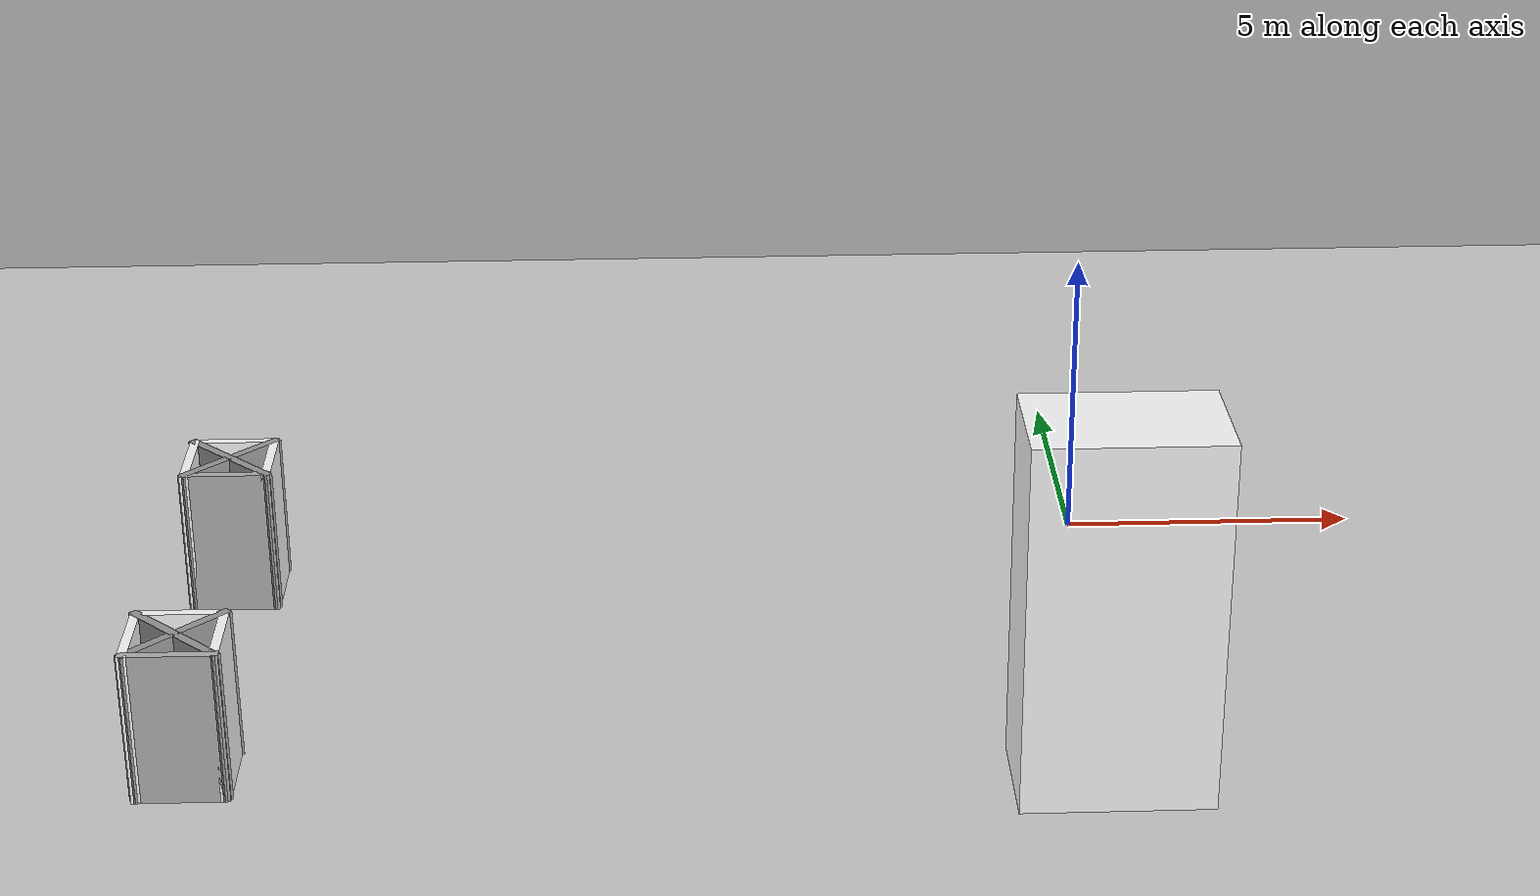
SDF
<sdf version="1.7">
 <world name="default">
  <model name="ground_plane">
   <static>1</static>
   <link name="link">
    <collision name="collision">
     <geometry><plane><normal>0 0 1</normal><size>100 100</size></plane></geometry>
     <surface>
      <contact><collide_bitmask>65535</collide_bitmask></contact>
      <friction><ode><mu>100</mu><mu2>50</mu2></ode></friction>
     </surface>
    </collision>
    <visual name="visual">
     <cast_shadows>0</cast_shadows>
     <geometry><plane><normal>0 0 1</normal><size>100 100</size></plane></geometry>
     <material>
      <script><uri>file://media/materials/scripts/gazebo.material</uri><name>Gazebo/Grey</name></script>
     </material>
    </visual>
   </link>
  </model>
  <model name="Untitled_1_clone_3_clone_7">
   <link name="Wall_10">
    <pose>4.92197 -3.43197 0 0 -0 1.5708</pose>
    <inertial>
     <mass>1</mass>
     <inertia><ixx>1</ixx><ixy>0</ixy><ixz>0</ixz><iyy>1</iyy><iyz>0</iyz><izz>1</izz></inertia>
    </inertial>
    <visual name="Wall_10_Visual">
     <pose>0 0 1.25 0 -0 0</pose>
     <geometry><box><size>1.5 0.15 2.5</size></box></geometry>
     <material>
      <script><uri>file://media/materials/scripts/gazebo.material</uri><name>Gazebo/CoM</name></script>
      <ambient>1 1 1 1</ambient>
      <shader type="pixel"><normal_map>__default__</normal_map></shader>
      <diffuse>1 1 1 1</diffuse>
      <specular>0 0 0 1</specular>
      <emissive>0 0 0 1</emissive>
     </material>
     <meta><layer>0</layer></meta>
    </visual>
    <collision name="Wall_10_Collision">
     <pose>0 0 1.25 0 -0 0</pose>
     <geometry><box><size>1.5 0.15 2.5</size></box></geometry>
     <surface>
      <friction>
       <ode><mu>1</mu><mu2>1</mu2><fdir1>0 0 0</fdir1><slip1>0</slip1><slip2>0</slip2></ode>
       <torsional>
        <coefficient>1</coefficient>
        <patch_radius>0</patch_radius>
        <surface_radius>0</surface_radius>
        <use_patch_radius>1</use_patch_radius>
        <ode><slip>0</slip></ode>
       </torsional>
      </friction>
      <bounce><restitution_coefficient>0</restitution_coefficient><threshold>1e+06</threshold></bounce>
      <contact>
       <collide_without_contact>0</collide_without_contact>
       <collide_without_contact_bitmask>1</collide_without_contact_bitmask>
       <collide_bitmask>1</collide_bitmask>
       <ode>
        <soft_cfm>0</soft_cfm>
        <soft_erp>0.2</soft_erp>
        <kp>1e+13</kp>
        <kd>1</kd>
        <max_vel>0.01</max_vel>
        <min_depth>0</min_depth>
       </ode>
       <bullet>
        <split_impulse>1</split_impulse>
        <split_impulse_penetration_threshold>-0.01</split_impulse_penetration_threshold>
        <soft_cfm>0</soft_cfm>
        <soft_erp>0.2</soft_erp>
        <kp>1e+13</kp>
        <kd>1</kd>
       </bullet>
      </contact>
     </surface>
    </collision>
   </link>
   <link name="Wall_11">
    <pose>5.59697 -3.43197 0 0 0 -0.785398</pose>
    <visual name="Wall_11_Visual">
     <pose>0 0 1.25 0 -0 0</pose>
     <geometry><box><size>2.05919 0.15 2.5</size></box></geometry>
     <material>
      <script><uri>file://media/materials/scripts/gazebo.material</uri><name>Gazebo/Grey</name></script>
      <ambient>1 1 1 1</ambient>
      <shader type="pixel"/>
     </material>
     <meta><layer>0</layer></meta>
    </visual>
    <collision name="Wall_11_Collision">
     <pose>0 0 1.25 0 -0 0</pose>
     <geometry><box><size>2.05919 0.15 2.5</size></box></geometry>
     <surface>
      <friction>
       <ode><mu>1</mu><mu2>1</mu2><fdir1>0 0 0</fdir1><slip1>0</slip1><slip2>0</slip2></ode>
       <torsional>
        <coefficient>1</coefficient>
        <patch_radius>0</patch_radius>
        <surface_radius>0</surface_radius>
        <use_patch_radius>1</use_patch_radius>
        <ode><slip>0</slip></ode>
       </torsional>
      </friction>
      <bounce><restitution_coefficient>0</restitution_coefficient><threshold>1e+06</threshold></bounce>
      <contact>
       <collide_without_contact>0</collide_without_contact>
       <collide_without_contact_bitmask>1</collide_without_contact_bitmask>
       <collide_bitmask>1</collide_bitmask>
       <ode>
        <soft_cfm>0</soft_cfm>
        <soft_erp>0.2</soft_erp>
        <kp>1e+13</kp>
        <kd>1</kd>
        <max_vel>0.01</max_vel>
        <min_depth>0</min_depth>
       </ode>
       <bullet>
        <split_impulse>1</split_impulse>
        <split_impulse_penetration_threshold>-0.01</split_impulse_penetration_threshold>
        <soft_cfm>0</soft_cfm>
        <soft_erp>0.2</soft_erp>
        <kp>1e+13</kp>
        <kd>1</kd>
       </bullet>
      </contact>
     </surface>
    </collision>
   </link>
   <link name="Wall_13">
    <pose>5.59697 -3.43197 0 0 -0 0.785398</pose>
    <visual name="Wall_13_Visual">
     <pose>0 0 1.25 0 -0 0</pose>
     <geometry><box><size>2.05919 0.15 2.5</size></box></geometry>
     <material>
      <script><uri>file://media/materials/scripts/gazebo.material</uri><name>Gazebo/Grey</name></script>
      <ambient>1 1 1 1</ambient>
      <shader type="pixel"/>
     </material>
     <meta><layer>0</layer></meta>
    </visual>
    <collision name="Wall_13_Collision">
     <pose>0 0 1.25 0 -0 0</pose>
     <geometry><box><size>2.05919 0.15 2.5</size></box></geometry>
     <surface>
      <friction>
       <ode><mu>1</mu><mu2>1</mu2><fdir1>0 0 0</fdir1><slip1>0</slip1><slip2>0</slip2></ode>
       <torsional>
        <coefficient>1</coefficient>
        <patch_radius>0</patch_radius>
        <surface_radius>0</surface_radius>
        <use_patch_radius>1</use_patch_radius>
        <ode><slip>0</slip></ode>
       </torsional>
      </friction>
      <bounce><restitution_coefficient>0</restitution_coefficient><threshold>1e+06</threshold></bounce>
      <contact>
       <collide_without_contact>0</collide_without_contact>
       <collide_without_contact_bitmask>1</collide_without_contact_bitmask>
       <collide_bitmask>1</collide_bitmask>
       <ode>
        <soft_cfm>0</soft_cfm>
        <soft_erp>0.2</soft_erp>
        <kp>1e+13</kp>
        <kd>1</kd>
        <max_vel>0.01</max_vel>
        <min_depth>0</min_depth>
       </ode>
       <bullet>
        <split_impulse>1</split_impulse>
        <split_impulse_penetration_threshold>-0.01</split_impulse_penetration_threshold>
        <soft_cfm>0</soft_cfm>
        <soft_erp>0.2</soft_erp>
        <kp>1e+13</kp>
        <kd>1</kd>
       </bullet>
      </contact>
     </surface>
    </collision>
   </link>
   <link name="Wall_7">
    <pose>5.59697 -2.75697 0 0 -0 0</pose>
    <inertial>
     <mass>1</mass>
     <inertia><ixx>1</ixx><ixy>0</ixy><ixz>0</ixz><iyy>1</iyy><iyz>0</iyz><izz>1</izz></inertia>
    </inertial>
    <visual name="Wall_7_Visual">
     <pose>0 0 1.25 0 -0 0</pose>
     <geometry><box><size>1.5 0.15 2.5</size></box></geometry>
     <material>
      <script><uri>file://media/materials/scripts/gazebo.material</uri><name>Gazebo/CoM</name></script>
      <ambient>1 1 1 1</ambient>
      <shader type="pixel"><normal_map>__default__</normal_map></shader>
      <diffuse>1 1 1 1</diffuse>
      <specular>0 0 0 1</specular>
      <emissive>0 0 0 1</emissive>
     </material>
     <meta><layer>0</layer></meta>
    </visual>
    <collision name="Wall_7_Collision">
     <pose>0 0 1.25 0 -0 0</pose>
     <geometry><box><size>1.5 0.15 2.5</size></box></geometry>
     <surface>
      <friction>
       <ode><mu>1</mu><mu2>1</mu2><fdir1>0 0 0</fdir1><slip1>0</slip1><slip2>0</slip2></ode>
       <torsional>
        <coefficient>1</coefficient>
        <patch_radius>0</patch_radius>
        <surface_radius>0</surface_radius>
        <use_patch_radius>1</use_patch_radius>
        <ode><slip>0</slip></ode>
       </torsional>
      </friction>
      <bounce><restitution_coefficient>0</restitution_coefficient><threshold>1e+06</threshold></bounce>
      <contact>
       <collide_without_contact>0</collide_without_contact>
       <collide_without_contact_bitmask>1</collide_without_contact_bitmask>
       <collide_bitmask>1</collide_bitmask>
       <ode>
        <soft_cfm>0</soft_cfm>
        <soft_erp>0.2</soft_erp>
        <kp>1e+13</kp>
        <kd>1</kd>
        <max_vel>0.01</max_vel>
        <min_depth>0</min_depth>
       </ode>
       <bullet>
        <split_impulse>1</split_impulse>
        <split_impulse_penetration_threshold>-0.01</split_impulse_penetration_threshold>
        <soft_cfm>0</soft_cfm>
        <soft_erp>0.2</soft_erp>
        <kp>1e+13</kp>
        <kd>1</kd>
       </bullet>
      </contact>
     </surface>
    </collision>
   </link>
   <link name="Wall_8">
    <pose>6.27197 -3.43197 0 0 0 -1.5708</pose>
    <inertial>
     <mass>1</mass>
     <inertia><ixx>1</ixx><ixy>0</ixy><ixz>0</ixz><iyy>1</iyy><iyz>0</iyz><izz>1</izz></inertia>
    </inertial>
    <visual name="Wall_8_Visual">
     <pose>0 0 1.25 0 -0 0</pose>
     <geometry><box><size>1.5 0.15 2.5</size></box></geometry>
     <material>
      <script><uri>file://media/materials/scripts/gazebo.material</uri><name>Gazebo/CoM</name></script>
      <ambient>1 1 1 1</ambient>
      <shader type="pixel"><normal_map>__default__</normal_map></shader>
      <diffuse>1 1 1 1</diffuse>
      <specular>0 0 0 1</specular>
      <emissive>0 0 0 1</emissive>
     </material>
     <meta><layer>0</layer></meta>
    </visual>
    <collision name="Wall_8_Collision">
     <pose>0 0 1.25 0 -0 0</pose>
     <geometry><box><size>1.5 0.15 2.5</size></box></geometry>
     <surface>
      <friction>
       <ode><mu>1</mu><mu2>1</mu2><fdir1>0 0 0</fdir1><slip1>0</slip1><slip2>0</slip2></ode>
       <torsional>
        <coefficient>1</coefficient>
        <patch_radius>0</patch_radius>
        <surface_radius>0</surface_radius>
        <use_patch_radius>1</use_patch_radius>
        <ode><slip>0</slip></ode>
       </torsional>
      </friction>
      <bounce><restitution_coefficient>0</restitution_coefficient><threshold>1e+06</threshold></bounce>
      <contact>
       <collide_without_contact>0</collide_without_contact>
       <collide_without_contact_bitmask>1</collide_without_contact_bitmask>
       <collide_bitmask>1</collide_bitmask>
       <ode>
        <soft_cfm>0</soft_cfm>
        <soft_erp>0.2</soft_erp>
        <kp>1e+13</kp>
        <kd>1</kd>
        <max_vel>0.01</max_vel>
        <min_depth>0</min_depth>
       </ode>
       <bullet>
        <split_impulse>1</split_impulse>
        <split_impulse_penetration_threshold>-0.01</split_impulse_penetration_threshold>
        <soft_cfm>0</soft_cfm>
        <soft_erp>0.2</soft_erp>
        <kp>1e+13</kp>
        <kd>1</kd>
       </bullet>
      </contact>
     </surface>
    </collision>
   </link>
   <link name="Wall_9">
    <pose>5.59697 -4.10697 0 0 -0 3.14159</pose>
    <inertial>
     <mass>1</mass>
     <inertia><ixx>1</ixx><ixy>0</ixy><ixz>0</ixz><iyy>1</iyy><iyz>0</iyz><izz>1</izz></inertia>
    </inertial>
    <visual name="Wall_9_Visual">
     <pose>0 0 1.25 0 -0 0</pose>
     <geometry><box><size>1.5 0.15 2.5</size></box></geometry>
     <material>
      <script><uri>file://media/materials/scripts/gazebo.material</uri><name>Gazebo/CoM</name></script>
      <ambient>1 1 1 1</ambient>
      <shader type="pixel"><normal_map>__default__</normal_map></shader>
      <diffuse>0.7 0.7 0.7 1</diffuse>
      <specular>0.01 0.01 0.01 1</specular>
      <emissive>0 0 0 1</emissive>
     </material>
     <meta><layer>0</layer></meta>
    </visual>
    <collision name="Wall_9_Collision">
     <pose>0 0 1.25 0 -0 0</pose>
     <geometry><box><size>1.5 0.15 2.5</size></box></geometry>
     <surface>
      <friction>
       <ode><mu>1</mu><mu2>1</mu2><fdir1>0 0 0</fdir1><slip1>0</slip1><slip2>0</slip2></ode>
       <torsional>
        <coefficient>1</coefficient>
        <patch_radius>0</patch_radius>
        <surface_radius>0</surface_radius>
        <use_patch_radius>1</use_patch_radius>
        <ode><slip>0</slip></ode>
       </torsional>
      </friction>
      <bounce><restitution_coefficient>0</restitution_coefficient><threshold>1e+06</threshold></bounce>
      <contact>
       <collide_without_contact>0</collide_without_contact>
       <collide_without_contact_bitmask>1</collide_without_contact_bitmask>
       <collide_bitmask>1</collide_bitmask>
       <ode>
        <soft_cfm>0</soft_cfm>
        <soft_erp>0.2</soft_erp>
        <kp>1e+13</kp>
        <kd>1</kd>
        <max_vel>0.01</max_vel>
        <min_depth>0</min_depth>
       </ode>
       <bullet>
        <split_impulse>1</split_impulse>
        <split_impulse_penetration_threshold>-0.01</split_impulse_penetration_threshold>
        <soft_cfm>0</soft_cfm>
        <soft_erp>0.2</soft_erp>
        <kp>1e+13</kp>
        <kd>1</kd>
       </bullet>
      </contact>
     </surface>
    </collision>
   </link>
   <static>1</static>
   <pose>-20.121 -4.83141 0 0 -0 0</pose>
  </model>
  <model name="Untitled_1_clone_3_clone_8">
   <link name="Wall_10">
    <pose>4.92197 -3.43197 0 0 -0 1.5708</pose>
    <inertial>
     <mass>1</mass>
     <inertia><ixx>1</ixx><ixy>0</ixy><ixz>0</ixz><iyy>1</iyy><iyz>0</iyz><izz>1</izz></inertia>
    </inertial>
    <visual name="Wall_10_Visual">
     <pose>0 0 1.25 0 -0 0</pose>
     <geometry><box><size>1.5 0.15 2.5</size></box></geometry>
     <material>
      <script><uri>file://media/materials/scripts/gazebo.material</uri><name>Gazebo/CoM</name></script>
      <ambient>1 1 1 1</ambient>
      <shader type="pixel"><normal_map>__default__</normal_map></shader>
      <diffuse>1 1 1 1</diffuse>
      <specular>0 0 0 1</specular>
      <emissive>0 0 0 1</emissive>
     </material>
     <meta><layer>0</layer></meta>
    </visual>
    <collision name="Wall_10_Collision">
     <pose>0 0 1.25 0 -0 0</pose>
     <geometry><box><size>1.5 0.15 2.5</size></box></geometry>
     <surface>
      <friction>
       <ode><mu>1</mu><mu2>1</mu2><fdir1>0 0 0</fdir1><slip1>0</slip1><slip2>0</slip2></ode>
       <torsional>
        <coefficient>1</coefficient>
        <patch_radius>0</patch_radius>
        <surface_radius>0</surface_radius>
        <use_patch_radius>1</use_patch_radius>
        <ode><slip>0</slip></ode>
       </torsional>
      </friction>
      <bounce><restitution_coefficient>0</restitution_coefficient><threshold>1e+06</threshold></bounce>
      <contact>
       <collide_without_contact>0</collide_without_contact>
       <collide_without_contact_bitmask>1</collide_without_contact_bitmask>
       <collide_bitmask>1</collide_bitmask>
       <ode>
        <soft_cfm>0</soft_cfm>
        <soft_erp>0.2</soft_erp>
        <kp>1e+13</kp>
        <kd>1</kd>
        <max_vel>0.01</max_vel>
        <min_depth>0</min_depth>
       </ode>
       <bullet>
        <split_impulse>1</split_impulse>
        <split_impulse_penetration_threshold>-0.01</split_impulse_penetration_threshold>
        <soft_cfm>0</soft_cfm>
        <soft_erp>0.2</soft_erp>
        <kp>1e+13</kp>
        <kd>1</kd>
       </bullet>
      </contact>
     </surface>
    </collision>
   </link>
   <link name="Wall_11">
    <pose>5.59697 -3.43197 0 0 0 -0.785398</pose>
    <visual name="Wall_11_Visual">
     <pose>0 0 1.25 0 -0 0</pose>
     <geometry><box><size>2.05919 0.15 2.5</size></box></geometry>
     <material>
      <script><uri>file://media/materials/scripts/gazebo.material</uri><name>Gazebo/Grey</name></script>
      <ambient>1 1 1 1</ambient>
      <shader type="pixel"/>
     </material>
     <meta><layer>0</layer></meta>
    </visual>
    <collision name="Wall_11_Collision">
     <pose>0 0 1.25 0 -0 0</pose>
     <geometry><box><size>2.05919 0.15 2.5</size></box></geometry>
     <surface>
      <friction>
       <ode><mu>1</mu><mu2>1</mu2><fdir1>0 0 0</fdir1><slip1>0</slip1><slip2>0</slip2></ode>
       <torsional>
        <coefficient>1</coefficient>
        <patch_radius>0</patch_radius>
        <surface_radius>0</surface_radius>
        <use_patch_radius>1</use_patch_radius>
        <ode><slip>0</slip></ode>
       </torsional>
      </friction>
      <bounce><restitution_coefficient>0</restitution_coefficient><threshold>1e+06</threshold></bounce>
      <contact>
       <collide_without_contact>0</collide_without_contact>
       <collide_without_contact_bitmask>1</collide_without_contact_bitmask>
       <collide_bitmask>1</collide_bitmask>
       <ode>
        <soft_cfm>0</soft_cfm>
        <soft_erp>0.2</soft_erp>
        <kp>1e+13</kp>
        <kd>1</kd>
        <max_vel>0.01</max_vel>
        <min_depth>0</min_depth>
       </ode>
       <bullet>
        <split_impulse>1</split_impulse>
        <split_impulse_penetration_threshold>-0.01</split_impulse_penetration_threshold>
        <soft_cfm>0</soft_cfm>
        <soft_erp>0.2</soft_erp>
        <kp>1e+13</kp>
        <kd>1</kd>
       </bullet>
      </contact>
     </surface>
    </collision>
   </link>
   <link name="Wall_13">
    <pose>5.59697 -3.43197 0 0 -0 0.785398</pose>
    <visual name="Wall_13_Visual">
     <pose>0 0 1.25 0 -0 0</pose>
     <geometry><box><size>2.05919 0.15 2.5</size></box></geometry>
     <material>
      <script><uri>file://media/materials/scripts/gazebo.material</uri><name>Gazebo/Grey</name></script>
      <ambient>1 1 1 1</ambient>
      <shader type="pixel"/>
     </material>
     <meta><layer>0</layer></meta>
    </visual>
    <collision name="Wall_13_Collision">
     <pose>0 0 1.25 0 -0 0</pose>
     <geometry><box><size>2.05919 0.15 2.5</size></box></geometry>
     <surface>
      <friction>
       <ode><mu>1</mu><mu2>1</mu2><fdir1>0 0 0</fdir1><slip1>0</slip1><slip2>0</slip2></ode>
       <torsional>
        <coefficient>1</coefficient>
        <patch_radius>0</patch_radius>
        <surface_radius>0</surface_radius>
        <use_patch_radius>1</use_patch_radius>
        <ode><slip>0</slip></ode>
       </torsional>
      </friction>
      <bounce><restitution_coefficient>0</restitution_coefficient><threshold>1e+06</threshold></bounce>
      <contact>
       <collide_without_contact>0</collide_without_contact>
       <collide_without_contact_bitmask>1</collide_without_contact_bitmask>
       <collide_bitmask>1</collide_bitmask>
       <ode>
        <soft_cfm>0</soft_cfm>
        <soft_erp>0.2</soft_erp>
        <kp>1e+13</kp>
        <kd>1</kd>
        <max_vel>0.01</max_vel>
        <min_depth>0</min_depth>
       </ode>
       <bullet>
        <split_impulse>1</split_impulse>
        <split_impulse_penetration_threshold>-0.01</split_impulse_penetration_threshold>
        <soft_cfm>0</soft_cfm>
        <soft_erp>0.2</soft_erp>
        <kp>1e+13</kp>
        <kd>1</kd>
       </bullet>
      </contact>
     </surface>
    </collision>
   </link>
   <link name="Wall_7">
    <pose>5.59697 -2.75697 0 0 -0 0</pose>
    <inertial>
     <mass>1</mass>
     <inertia><ixx>1</ixx><ixy>0</ixy><ixz>0</ixz><iyy>1</iyy><iyz>0</iyz><izz>1</izz></inertia>
    </inertial>
    <visual name="Wall_7_Visual">
     <pose>0 0 1.25 0 -0 0</pose>
     <geometry><box><size>1.5 0.15 2.5</size></box></geometry>
     <material>
      <script><uri>file://media/materials/scripts/gazebo.material</uri><name>Gazebo/CoM</name></script>
      <ambient>1 1 1 1</ambient>
      <shader type="pixel"><normal_map>__default__</normal_map></shader>
      <diffuse>1 1 1 1</diffuse>
      <specular>0 0 0 1</specular>
      <emissive>0 0 0 1</emissive>
     </material>
     <meta><layer>0</layer></meta>
    </visual>
    <collision name="Wall_7_Collision">
     <pose>0 0 1.25 0 -0 0</pose>
     <geometry><box><size>1.5 0.15 2.5</size></box></geometry>
     <surface>
      <friction>
       <ode><mu>1</mu><mu2>1</mu2><fdir1>0 0 0</fdir1><slip1>0</slip1><slip2>0</slip2></ode>
       <torsional>
        <coefficient>1</coefficient>
        <patch_radius>0</patch_radius>
        <surface_radius>0</surface_radius>
        <use_patch_radius>1</use_patch_radius>
        <ode><slip>0</slip></ode>
       </torsional>
      </friction>
      <bounce><restitution_coefficient>0</restitution_coefficient><threshold>1e+06</threshold></bounce>
      <contact>
       <collide_without_contact>0</collide_without_contact>
       <collide_without_contact_bitmask>1</collide_without_contact_bitmask>
       <collide_bitmask>1</collide_bitmask>
       <ode>
        <soft_cfm>0</soft_cfm>
        <soft_erp>0.2</soft_erp>
        <kp>1e+13</kp>
        <kd>1</kd>
        <max_vel>0.01</max_vel>
        <min_depth>0</min_depth>
       </ode>
       <bullet>
        <split_impulse>1</split_impulse>
        <split_impulse_penetration_threshold>-0.01</split_impulse_penetration_threshold>
        <soft_cfm>0</soft_cfm>
        <soft_erp>0.2</soft_erp>
        <kp>1e+13</kp>
        <kd>1</kd>
       </bullet>
      </contact>
     </surface>
    </collision>
   </link>
   <link name="Wall_8">
    <pose>6.27197 -3.43197 0 0 0 -1.5708</pose>
    <inertial>
     <mass>1</mass>
     <inertia><ixx>1</ixx><ixy>0</ixy><ixz>0</ixz><iyy>1</iyy><iyz>0</iyz><izz>1</izz></inertia>
    </inertial>
    <visual name="Wall_8_Visual">
     <pose>0 0 1.25 0 -0 0</pose>
     <geometry><box><size>1.5 0.15 2.5</size></box></geometry>
     <material>
      <script><uri>file://media/materials/scripts/gazebo.material</uri><name>Gazebo/CoM</name></script>
      <ambient>1 1 1 1</ambient>
      <shader type="pixel"><normal_map>__default__</normal_map></shader>
      <diffuse>1 1 1 1</diffuse>
      <specular>0 0 0 1</specular>
      <emissive>0 0 0 1</emissive>
     </material>
     <meta><layer>0</layer></meta>
    </visual>
    <collision name="Wall_8_Collision">
     <pose>0 0 1.25 0 -0 0</pose>
     <geometry><box><size>1.5 0.15 2.5</size></box></geometry>
     <surface>
      <friction>
       <ode><mu>1</mu><mu2>1</mu2><fdir1>0 0 0</fdir1><slip1>0</slip1><slip2>0</slip2></ode>
       <torsional>
        <coefficient>1</coefficient>
        <patch_radius>0</patch_radius>
        <surface_radius>0</surface_radius>
        <use_patch_radius>1</use_patch_radius>
        <ode><slip>0</slip></ode>
       </torsional>
      </friction>
      <bounce><restitution_coefficient>0</restitution_coefficient><threshold>1e+06</threshold></bounce>
      <contact>
       <collide_without_contact>0</collide_without_contact>
       <collide_without_contact_bitmask>1</collide_without_contact_bitmask>
       <collide_bitmask>1</collide_bitmask>
       <ode>
        <soft_cfm>0</soft_cfm>
        <soft_erp>0.2</soft_erp>
        <kp>1e+13</kp>
        <kd>1</kd>
        <max_vel>0.01</max_vel>
        <min_depth>0</min_depth>
       </ode>
       <bullet>
        <split_impulse>1</split_impulse>
        <split_impulse_penetration_threshold>-0.01</split_impulse_penetration_threshold>
        <soft_cfm>0</soft_cfm>
        <soft_erp>0.2</soft_erp>
        <kp>1e+13</kp>
        <kd>1</kd>
       </bullet>
      </contact>
     </surface>
    </collision>
   </link>
   <link name="Wall_9">
    <pose>5.59697 -4.10697 0 0 -0 3.14159</pose>
    <inertial>
     <mass>1</mass>
     <inertia><ixx>1</ixx><ixy>0</ixy><ixz>0</ixz><iyy>1</iyy><iyz>0</iyz><izz>1</izz></inertia>
    </inertial>
    <visual name="Wall_9_Visual">
     <pose>0 0 1.25 0 -0 0</pose>
     <geometry><box><size>1.5 0.15 2.5</size></box></geometry>
     <material>
      <script><uri>file://media/materials/scripts/gazebo.material</uri><name>Gazebo/CoM</name></script>
      <ambient>1 1 1 1</ambient>
      <shader type="pixel"><normal_map>__default__</normal_map></shader>
      <diffuse>0.7 0.7 0.7 1</diffuse>
      <specular>0.01 0.01 0.01 1</specular>
      <emissive>0 0 0 1</emissive>
     </material>
     <meta><layer>0</layer></meta>
    </visual>
    <collision name="Wall_9_Collision">
     <pose>0 0 1.25 0 -0 0</pose>
     <geometry><box><size>1.5 0.15 2.5</size></box></geometry>
     <surface>
      <friction>
       <ode><mu>1</mu><mu2>1</mu2><fdir1>0 0 0</fdir1><slip1>0</slip1><slip2>0</slip2></ode>
       <torsional>
        <coefficient>1</coefficient>
        <patch_radius>0</patch_radius>
        <surface_radius>0</surface_radius>
        <use_patch_radius>1</use_patch_radius>
        <ode><slip>0</slip></ode>
       </torsional>
      </friction>
      <bounce><restitution_coefficient>0</restitution_coefficient><threshold>1e+06</threshold></bounce>
      <contact>
       <collide_without_contact>0</collide_without_contact>
       <collide_without_contact_bitmask>1</collide_without_contact_bitmask>
       <collide_bitmask>1</collide_bitmask>
       <ode>
        <soft_cfm>0</soft_cfm>
        <soft_erp>0.2</soft_erp>
        <kp>1e+13</kp>
        <kd>1</kd>
        <max_vel>0.01</max_vel>
        <min_depth>0</min_depth>
       </ode>
       <bullet>
        <split_impulse>1</split_impulse>
        <split_impulse_penetration_threshold>-0.01</split_impulse_penetration_threshold>
        <soft_cfm>0</soft_cfm>
        <soft_erp>0.2</soft_erp>
        <kp>1e+13</kp>
        <kd>1</kd>
       </bullet>
      </contact>
     </surface>
    </collision>
   </link>
   <static>1</static>
   <pose>-20.0887 1.48781 0 0 -0 0</pose>
  </model>
  <model name="Untitled_clone_clone_0_clone_clone_0_clone_0_clone_0_clone_0_clone_0_clone_1">
   <link name="Wall_0">
    <pose>-0.877501 -4.2975 0 0 -0 0</pose>
    <inertial>
     <mass>1</mass>
     <inertia><ixx>1</ixx><ixy>0</ixy><ixz>0</ixz><iyy>1</iyy><iyz>0</iyz><izz>1</izz></inertia>
    </inertial>
    <visual name="Wall_0_Visual">
     <pose>0 0 3 0 -0 0</pose>
     <geometry><box><size>3 2 6</size></box></geometry>
     <material>
      <script><uri>file://media/materials/scripts/gazebo.material</uri><name>Gazebo/CoM</name></script>
      <ambient>1 1 1 1</ambient>
      <shader type="pixel"><normal_map>__default__</normal_map></shader>
      <diffuse>1 1 1 1</diffuse>
      <specular>0.2 0.2 0.2 1</specular>
      <emissive>0 0 0 1</emissive>
     </material>
     <meta><layer>0</layer></meta>
    </visual>
    <collision name="Wall_0_Collision">
     <pose>0 0 3 0 -0 0</pose>
     <geometry><box><size>3 2 6</size></box></geometry>
     <surface>
      <friction>
       <ode><mu>1</mu><mu2>1</mu2><fdir1>0 0 0</fdir1><slip1>0</slip1><slip2>0</slip2></ode>
       <torsional>
        <coefficient>1</coefficient>
        <patch_radius>0</patch_radius>
        <surface_radius>0</surface_radius>
        <use_patch_radius>1</use_patch_radius>
        <ode><slip>0</slip></ode>
       </torsional>
      </friction>
      <bounce><restitution_coefficient>0</restitution_coefficient><threshold>1e+06</threshold></bounce>
      <contact>
       <collide_without_contact>0</collide_without_contact>
       <collide_without_contact_bitmask>1</collide_without_contact_bitmask>
       <collide_bitmask>1</collide_bitmask>
       <ode>
        <soft_cfm>0</soft_cfm>
        <soft_erp>0.2</soft_erp>
        <kp>1e+13</kp>
        <kd>1</kd>
        <max_vel>0.01</max_vel>
        <min_depth>0</min_depth>
       </ode>
       <bullet>
        <split_impulse>1</split_impulse>
        <split_impulse_penetration_threshold>-0.01</split_impulse_penetration_threshold>
        <soft_cfm>0</soft_cfm>
        <soft_erp>0.2</soft_erp>
        <kp>1e+13</kp>
        <kd>1</kd>
       </bullet>
      </contact>
     </surface>
    </collision>
   </link>
   <static>1</static>
   <pose>0.460641 -4.57605 0 0 -0 0</pose>
  </model>
 </world>
</sdf>
